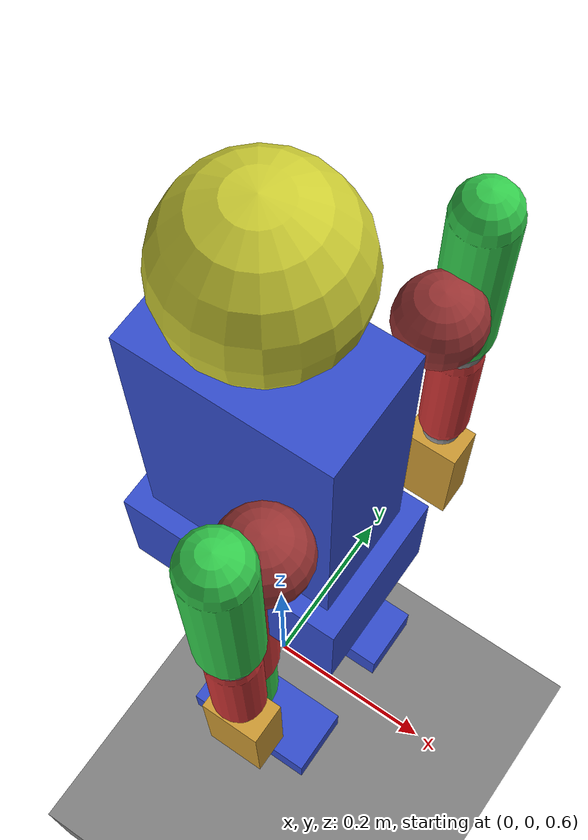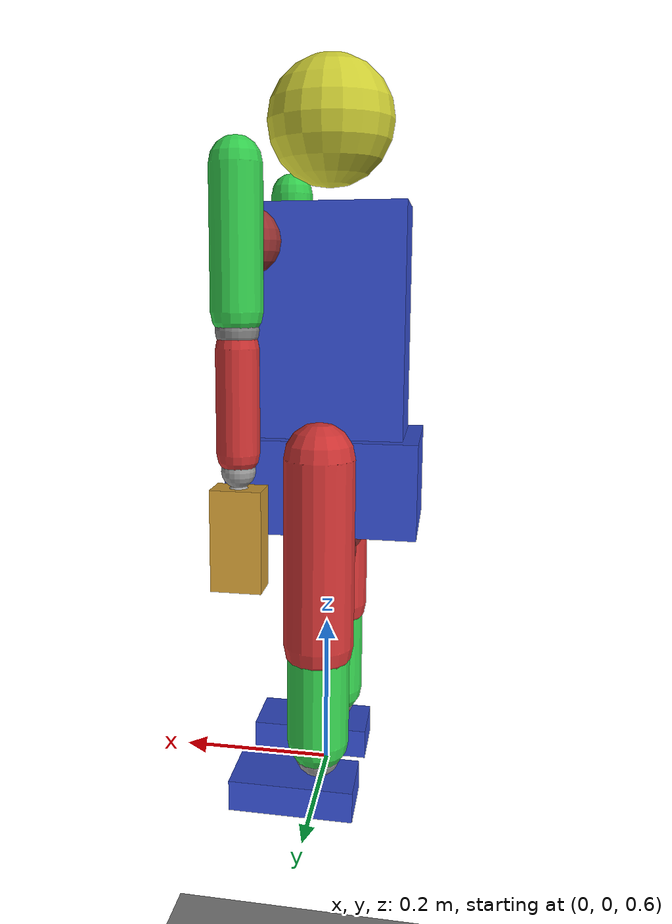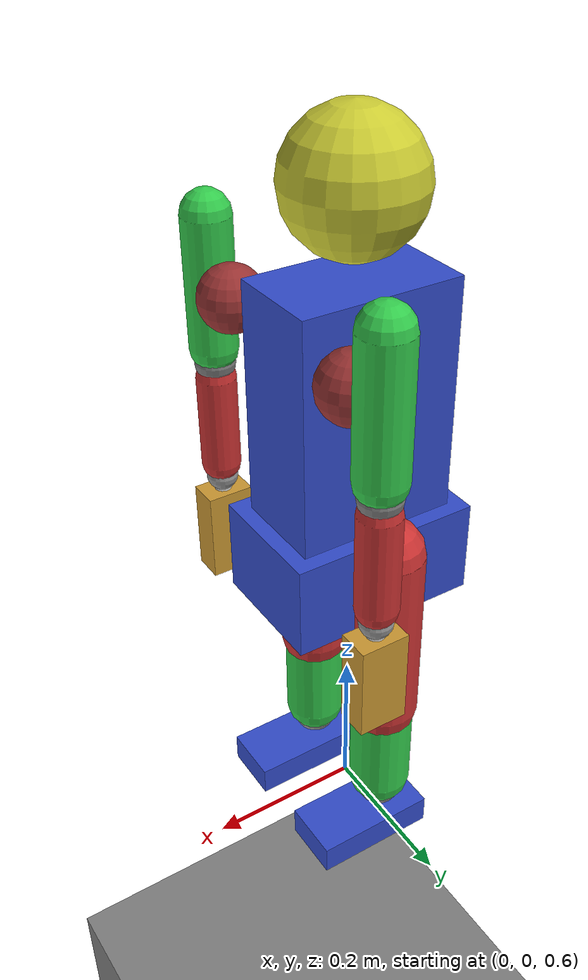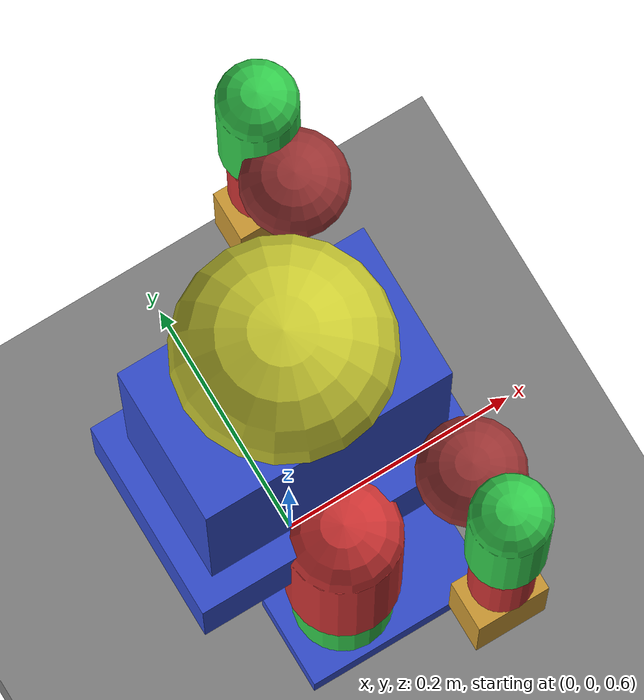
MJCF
<mujoco model="unitree_g1_29dof">
    <option timestep="0.001"/>

    <worldbody>
        <light pos="0 -3 3" dir="0 0 -1"/>
        <geom name="floor" size="10 10 0.1" type="box" rgba="0.5 0.5 0.5 1"/>

        <!-- Complete 29 DOF Unitree G1 -->
        <body name="pelvis" pos="0 0 1">
            <camera name="track" mode="trackcom" pos="0 -4 2" xyaxes="1 0 0 0 1 2"/>
            <joint name="root" type="free"/>
            <geom name="pelvis" type="box" size="0.12 0.08 0.06" rgba="0.2 0.3 0.8 1" mass="5"/>

            <!-- Torso (1 DOF) -->
            <body name="torso" pos="0 0 0.15">
                <joint name="torso_pitch" type="hinge" axis="1 0 0" range="-30 30"/>
                <geom name="torso" type="box" size="0.1 0.06 0.2" rgba="0.2 0.3 0.8 1" mass="3"/>

                <!-- Head (2 DOF) -->
                <body name="head_yaw" pos="0 0 0.25">
                    <joint name="head_yaw" type="hinge" axis="0 0 1" range="-90 90"/>
                    <geom name="head_yaw_link" type="sphere" size="0.03" rgba="0.7 0.7 0.7 1" mass="0.5"/>

                    <body name="head" pos="0 0 0.05">
                        <joint name="head_pitch" type="hinge" axis="1 0 0" range="-30 30"/>
                        <geom name="head" type="sphere" size="0.08" rgba="0.8 0.8 0.2 1" mass="1"/>
                    </body>
                </body>

                <!-- Left Arm (7 DOF) -->
                <body name="l_shoulder_pitch" pos="0.08 0.12 0.15">
                    <joint name="l_shoulder_pitch" type="hinge" axis="1 0 0" range="-180 60"/>
                    <geom name="l_shoulder" type="sphere" size="0.04" rgba="0.6 0.2 0.2 1" mass="0.8"/>

                    <body name="l_shoulder_roll" pos="0 0.05 0">
                        <joint name="l_shoulder_roll" type="hinge" axis="0 1 0" range="-120 120"/>
                        <geom name="l_upper_arm" type="capsule" size="0.03 0.08" rgba="0.2 0.8 0.3 1" mass="0.8"/>

                        <body name="l_shoulder_yaw" pos="0 0 -0.1">
                            <joint name="l_shoulder_yaw" type="hinge" axis="0 0 1" range="-90 90"/>
                            <geom name="l_shoulder_yaw_link" type="sphere" size="0.025" rgba="0.5 0.5 0.5 1" mass="0.5"/>

                            <body name="l_elbow" pos="0 0 -0.08">
                                <joint name="l_elbow_pitch" type="hinge" axis="1 0 0" range="-150 10"/>
                                <geom name="l_forearm" type="capsule" size="0.025 0.06" rgba="0.8 0.2 0.2 1" mass="0.6"/>

                                <body name="l_wrist_pitch" pos="0 0 -0.08">
                                    <joint name="l_wrist_pitch" type="hinge" axis="1 0 0" range="-60 60"/>
                                    <geom name="l_wrist_pitch_link" type="sphere" size="0.02" rgba="0.6 0.6 0.6 1" mass="0.3"/>

                                    <body name="l_wrist_yaw" pos="0 0 -0.03">
                                        <joint name="l_wrist_yaw" type="hinge" axis="0 0 1" range="-45 45"/>
                                        <geom name="l_wrist_yaw_link" type="sphere" size="0.015" rgba="0.6 0.6 0.6 1" mass="0.2"/>

                                        <body name="l_hand" pos="0 0 -0.05">
                                            <joint name="l_hand_pitch" type="hinge" axis="1 0 0" range="-30 30"/>
                                            <geom name="l_hand" type="box" size="0.03 0.02 0.06" rgba="0.8 0.6 0.2 1" mass="0.3"/>
                                        </body>
                                    </body>
                                </body>
                            </body>
                        </body>
                    </body>
                </body>

                <!-- Right Arm (7 DOF) -->
                <body name="r_shoulder_pitch" pos="0.08 -0.12 0.15">
                    <joint name="r_shoulder_pitch" type="hinge" axis="1 0 0" range="-180 60"/>
                    <geom name="r_shoulder" type="sphere" size="0.04" rgba="0.6 0.2 0.2 1" mass="0.8"/>

                    <body name="r_shoulder_roll" pos="0 -0.05 0">
                        <joint name="r_shoulder_roll" type="hinge" axis="0 -1 0" range="-120 120"/>
                        <geom name="r_upper_arm" type="capsule" size="0.03 0.08" rgba="0.2 0.8 0.3 1" mass="0.8"/>

                        <body name="r_shoulder_yaw" pos="0 0 -0.1">
                            <joint name="r_shoulder_yaw" type="hinge" axis="0 0 1" range="-90 90"/>
                            <geom name="r_shoulder_yaw_link" type="sphere" size="0.025" rgba="0.5 0.5 0.5 1" mass="0.5"/>

                            <body name="r_elbow" pos="0 0 -0.08">
                                <joint name="r_elbow_pitch" type="hinge" axis="1 0 0" range="-150 10"/>
                                <geom name="r_forearm" type="capsule" size="0.025 0.06" rgba="0.8 0.2 0.2 1" mass="0.6"/>

                                <body name="r_wrist_pitch" pos="0 0 -0.08">
                                    <joint name="r_wrist_pitch" type="hinge" axis="1 0 0" range="-60 60"/>
                                    <geom name="r_wrist_pitch_link" type="sphere" size="0.02" rgba="0.6 0.6 0.6 1" mass="0.3"/>

                                    <body name="r_wrist_yaw" pos="0 0 -0.03">
                                        <joint name="r_wrist_yaw" type="hinge" axis="0 0 1" range="-45 45"/>
                                        <geom name="r_wrist_yaw_link" type="sphere" size="0.015" rgba="0.6 0.6 0.6 1" mass="0.2"/>

                                        <body name="r_hand" pos="0 0 -0.05">
                                            <joint name="r_hand_pitch" type="hinge" axis="1 0 0" range="-30 30"/>
                                            <geom name="r_hand" type="box" size="0.03 0.02 0.06" rgba="0.8 0.6 0.2 1" mass="0.3"/>
                                        </body>
                                    </body>
                                </body>
                            </body>
                        </body>
                    </body>
                </body>
            </body>

            <!-- Left Leg (6 DOF) -->
            <body name="l_hip_pitch" pos="0 0.06 -0.08">
                <joint name="l_hip_pitch" type="hinge" axis="1 0 0" range="-60 120"/>
                <geom name="l_hip" type="sphere" size="0.045" rgba="0.6 0.2 0.2 1" mass="1.5"/>

                <body name="l_hip_roll" pos="0 0.02 0">
                    <joint name="l_hip_roll" type="hinge" axis="0 1 0" range="-30 30"/>
                    <geom name="l_hip_roll_link" type="sphere" size="0.03" rgba="0.6 0.6 0.6 1" mass="0.8"/>

                    <body name="l_hip_yaw" pos="0 0 0">
                        <joint name="l_hip_yaw" type="hinge" axis="0 0 1" range="-45 45"/>
                        <geom name="l_thigh" type="capsule" size="0.045 0.12" rgba="0.8 0.2 0.2 1" mass="2"/>

                        <body name="l_knee" pos="0 0 -0.15">
                            <joint name="l_knee_pitch" type="hinge" axis="1 0 0" range="-150 0"/>
                            <geom name="l_shin" type="capsule" size="0.04 0.1" rgba="0.2 0.8 0.3 1" mass="1.5"/>

                            <body name="l_ankle_pitch" pos="0 0 -0.12">
                                <joint name="l_ankle_pitch" type="hinge" axis="1 0 0" range="-45 45"/>
                                <geom name="l_ankle_pitch_link" type="sphere" size="0.03" rgba="0.6 0.6 0.6 1" mass="0.5"/>

                                <body name="l_ankle_roll" pos="0 0 -0.03">
                                    <joint name="l_ankle_roll" type="hinge" axis="0 1 0" range="-25 25"/>
                                    <geom name="l_foot" type="box" size="0.08 0.04 0.02" pos="0.03 0 -0.02" rgba="0.2 0.3 0.8 1" mass="0.8"/>
                                </body>
                            </body>
                        </body>
                    </body>
                </body>
            </body>

            <!-- Right Leg (6 DOF) -->
            <body name="r_hip_pitch" pos="0 -0.06 -0.08">
                <joint name="r_hip_pitch" type="hinge" axis="1 0 0" range="-60 120"/>
                <geom name="r_hip" type="sphere" size="0.045" rgba="0.6 0.2 0.2 1" mass="1.5"/>

                <body name="r_hip_roll" pos="0 -0.02 0">
                    <joint name="r_hip_roll" type="hinge" axis="0 -1 0" range="-30 30"/>
                    <geom name="r_hip_roll_link" type="sphere" size="0.03" rgba="0.6 0.6 0.6 1" mass="0.8"/>

                    <body name="r_hip_yaw" pos="0 0 0">
                        <joint name="r_hip_yaw" type="hinge" axis="0 0 1" range="-45 45"/>
                        <geom name="r_thigh" type="capsule" size="0.045 0.12" rgba="0.8 0.2 0.2 1" mass="2"/>

                        <body name="r_knee" pos="0 0 -0.15">
                            <joint name="r_knee_pitch" type="hinge" axis="1 0 0" range="-150 0"/>
                            <geom name="r_shin" type="capsule" size="0.04 0.1" rgba="0.2 0.8 0.3 1" mass="1.5"/>

                            <body name="r_ankle_pitch" pos="0 0 -0.12">
                                <joint name="r_ankle_pitch" type="hinge" axis="1 0 0" range="-45 45"/>
                                <geom name="r_ankle_pitch_link" type="sphere" size="0.03" rgba="0.6 0.6 0.6 1" mass="0.5"/>

                                <body name="r_ankle_roll" pos="0 0 -0.03">
                                    <joint name="r_ankle_roll" type="hinge" axis="0 -1 0" range="-25 25"/>
                                    <geom name="r_foot" type="box" size="0.08 0.04 0.02" pos="0.03 0 -0.02" rgba="0.2 0.3 0.8 1" mass="0.8"/>
                                </body>
                            </body>
                        </body>
                    </body>
                </body>
            </body>
        </body>
    </worldbody>

    <actuator>
        <!-- Torso (1) -->
        <motor name="torso_pitch_motor" joint="torso_pitch" gear="100"/>

        <!-- Head (2) -->
        <motor name="head_yaw_motor" joint="head_yaw" gear="30"/>
        <motor name="head_pitch_motor" joint="head_pitch" gear="30"/>

        <!-- Left Arm (7) -->
        <motor name="l_shoulder_pitch_motor" joint="l_shoulder_pitch" gear="100"/>
        <motor name="l_shoulder_roll_motor" joint="l_shoulder_roll" gear="100"/>
        <motor name="l_shoulder_yaw_motor" joint="l_shoulder_yaw" gear="80"/>
        <motor name="l_elbow_pitch_motor" joint="l_elbow_pitch" gear="60"/>
        <motor name="l_wrist_pitch_motor" joint="l_wrist_pitch" gear="30"/>
        <motor name="l_wrist_yaw_motor" joint="l_wrist_yaw" gear="25"/>
        <motor name="l_hand_pitch_motor" joint="l_hand_pitch" gear="20"/>

        <!-- Right Arm (7) -->
        <motor name="r_shoulder_pitch_motor" joint="r_shoulder_pitch" gear="100"/>
        <motor name="r_shoulder_roll_motor" joint="r_shoulder_roll" gear="100"/>
        <motor name="r_shoulder_yaw_motor" joint="r_shoulder_yaw" gear="80"/>
        <motor name="r_elbow_pitch_motor" joint="r_elbow_pitch" gear="60"/>
        <motor name="r_wrist_pitch_motor" joint="r_wrist_pitch" gear="30"/>
        <motor name="r_wrist_yaw_motor" joint="r_wrist_yaw" gear="25"/>
        <motor name="r_hand_pitch_motor" joint="r_hand_pitch" gear="20"/>

        <!-- Left Leg (6) -->
        <motor name="l_hip_pitch_motor" joint="l_hip_pitch" gear="200"/>
        <motor name="l_hip_roll_motor" joint="l_hip_roll" gear="200"/>
        <motor name="l_hip_yaw_motor" joint="l_hip_yaw" gear="150"/>
        <motor name="l_knee_pitch_motor" joint="l_knee_pitch" gear="200"/>
        <motor name="l_ankle_pitch_motor" joint="l_ankle_pitch" gear="100"/>
        <motor name="l_ankle_roll_motor" joint="l_ankle_roll" gear="100"/>

        <!-- Right Leg (6) -->
        <motor name="r_hip_pitch_motor" joint="r_hip_pitch" gear="200"/>
        <motor name="r_hip_roll_motor" joint="r_hip_roll" gear="200"/>
        <motor name="r_hip_yaw_motor" joint="r_hip_yaw" gear="150"/>
        <motor name="r_knee_pitch_motor" joint="r_knee_pitch" gear="200"/>
        <motor name="r_ankle_pitch_motor" joint="r_ankle_pitch" gear="100"/>
        <motor name="r_ankle_roll_motor" joint="r_ankle_roll" gear="100"/>
    </actuator>
</mujoco>
